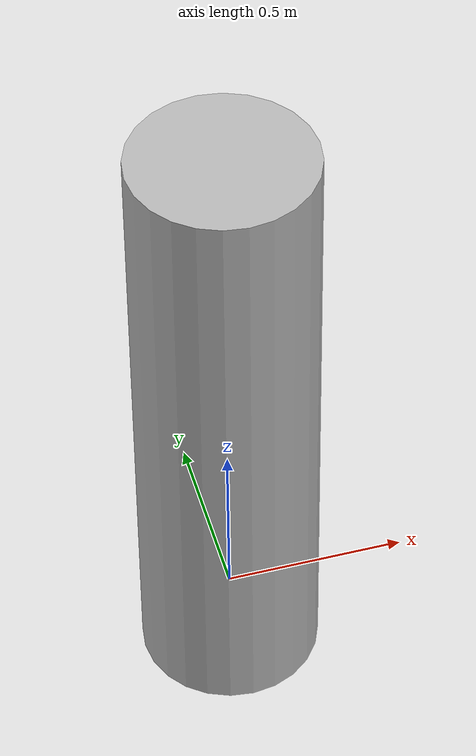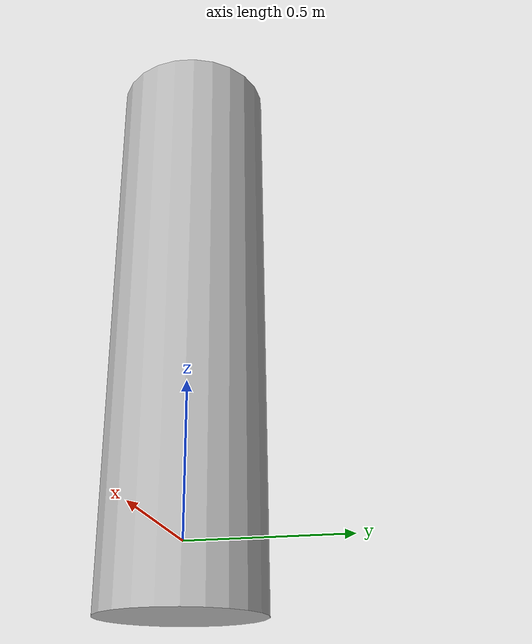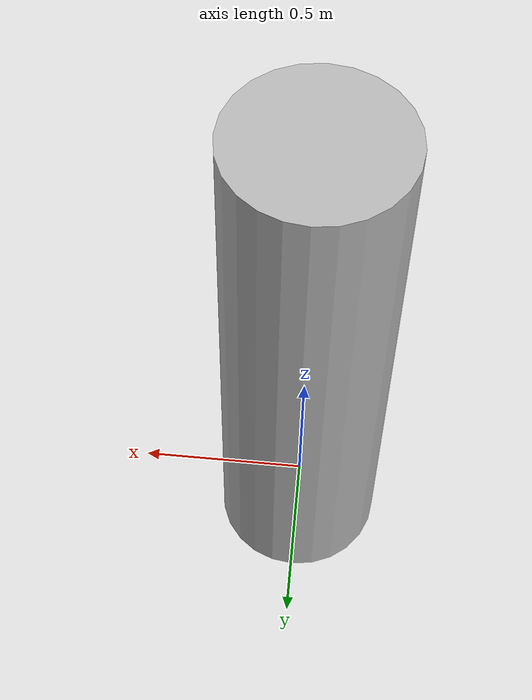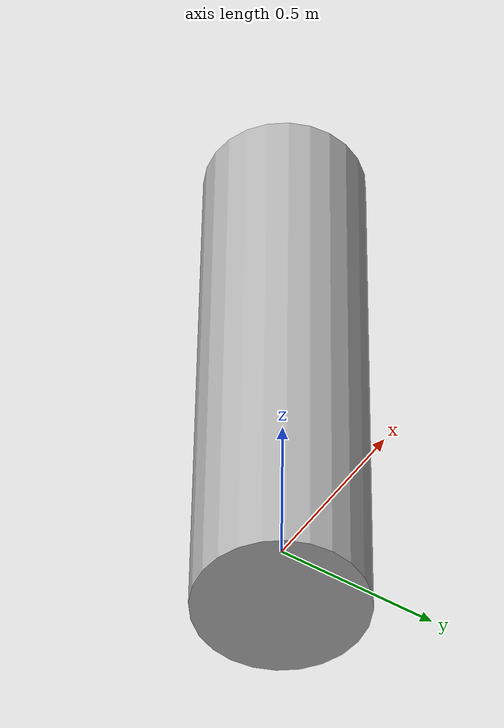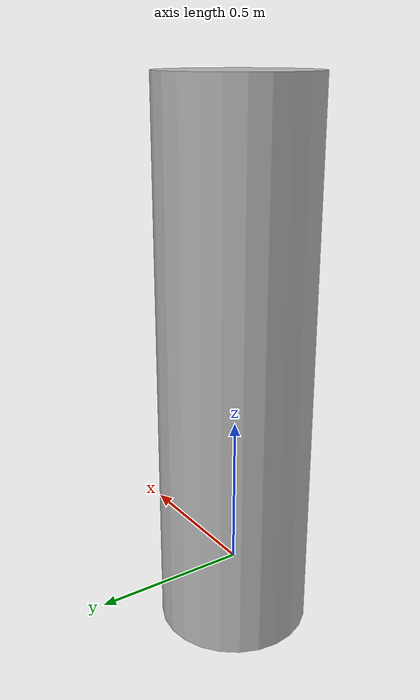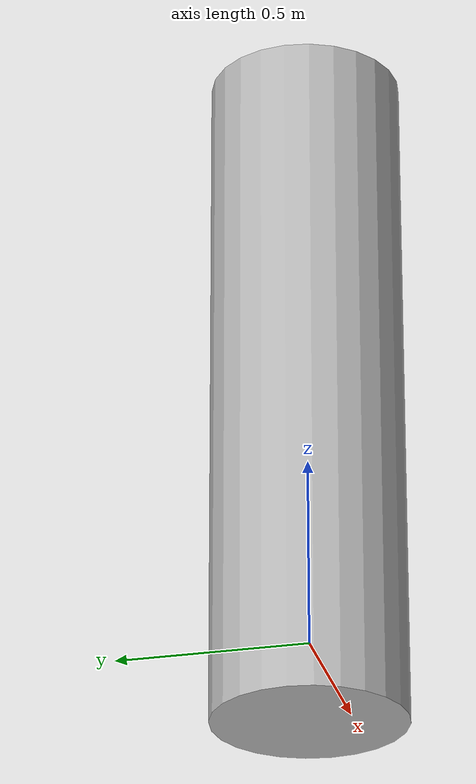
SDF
<?xml version='1.0'?>
<sdf version='1.4'>
  <model name="lgp_pedestrian">
        <static>false</static>

	<link name='chassis'>
            <pose>0.0 0 0.69 0 0 0</pose>

	      <inertial>
		<mass>70.0</mass>
	      </inertial>

            <collision name='collision'>
              <geometry>
                <cylinder>
              	  <radius>0.25</radius>
              	  <length>1.8</length>
            	</cylinder>
              </geometry>

                  <surface>
		    <friction>
		      <ode>
		        <mu>0.0</mu>
		        <mu2>0</mu2>
		      </ode>
		    </friction>
		  </surface>

            </collision>

            <visual name='visual'>
              <geometry>
		<cylinder>
              	  <radius>0.25</radius>
              	  <length>1.8</length>
            	</cylinder>
              </geometry>
            </visual>
          </link>

  </model>
</sdf>
